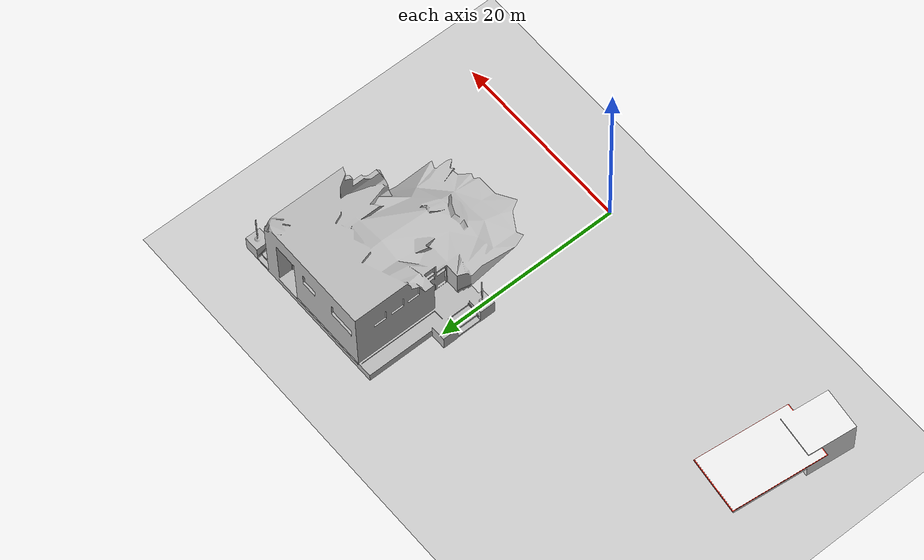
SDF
<sdf version="1.7">
 <world name="default">
  <light name="sun" type="directional">
   <pose>0 0 10 0 -0 0</pose>
   <diffuse>0.8 0.8 0.8 1</diffuse>
   <specular>0.2 0.2 0.2 1</specular>
   <attenuation>
    <range>1000</range>
    <constant>0.9</constant>
    <linear>0.01</linear>
    <quadratic>0.001</quadratic>
   </attenuation>
   <direction>-0.5 0.1 -0.9</direction>
   <spot><inner_angle>0</inner_angle><outer_angle>0</outer_angle><falloff>0</falloff></spot>
  </light>
  <model name="ground_plane">
   <static>1</static>
   <link name="link">
    <collision name="collision">
     <geometry><plane><normal>0 0 1</normal><size>100 100</size></plane></geometry>
     <surface>
      <contact><collide_bitmask>65535</collide_bitmask></contact>
      <friction><ode><mu>100</mu><mu2>50</mu2></ode></friction>
     </surface>
    </collision>
    <visual name="visual">
     <cast_shadows>0</cast_shadows>
     <geometry><plane><normal>0 0 1</normal><size>100 100</size></plane></geometry>
     <material>
      <script><uri>file://media/materials/scripts/gazebo.material</uri><name>Gazebo/Grey</name></script>
     </material>
    </visual>
   </link>
  </model>
  <gravity>0 0 -9.8</gravity>
  <magnetic_field>6e-06 2.3e-05 -4.2e-05</magnetic_field>
  <atmosphere type="adiabatic"/>
  <physics type="ode">
   <max_step_size>0.001</max_step_size>
   <real_time_factor>1</real_time_factor>
   <real_time_update_rate>1000</real_time_update_rate>
  </physics>
  <scene><ambient>0.4 0.4 0.4 1</ambient><background>0.7 0.7 0.7 1</background><shadows>1</shadows></scene>
  <spherical_coordinates>
   <surface_model>EARTH_WGS84</surface_model>
   <latitude_deg>0</latitude_deg>
   <longitude_deg>0</longitude_deg>
   <elevation>0</elevation>
   <heading_deg>0</heading_deg>
  </spherical_coordinates>
  <model name="block_robot_xacro">
   <link name="base_footprint">
    <inertial>
     <pose>0 0 0.025111 0 -0 0</pose>
     <mass>4.51</mass>
     <inertia>
      <ixx>0.00472078</ixx>
      <ixy>0</ixy>
      <ixz>0</ixz>
      <iyy>0.00472078</iyy>
      <iyz>0</iyz>
      <izz>0.0075125</izz>
     </inertia>
    </inertial>
    <collision name="base_footprint_fixed_joint_lump__base_link_collision">
     <pose>0 0 0.025 0 -0 0</pose>
     <geometry><box><size>0.1 0.1 0.05</size></box></geometry>
    </collision>
    <collision name="base_footprint_fixed_joint_lump__laser_link_collision_1">
     <pose>0 0 0.075 0 -0 0</pose>
     <geometry><cylinder><length>0.05</length><radius>0.05</radius></cylinder></geometry>
    </collision>
    <visual name="base_footprint_fixed_joint_lump__base_link_visual">
     <pose>0 0 0.025 0 -0 0</pose>
     <geometry><box><size>0.1 0.1 0.05</size></box></geometry>
     <material>
      <script><name>Gazebo/Green</name><uri>file://media/materials/scripts/gazebo.material</uri></script>
     </material>
    </visual>
    <visual name="base_footprint_fixed_joint_lump__laser_link_visual_1">
     <pose>0 0 0.075 0 -0 0</pose>
     <geometry><cylinder><length>0.05</length><radius>0.05</radius></cylinder></geometry>
     <material>
      <script><name>Gazebo/Red</name><uri>file://media/materials/scripts/gazebo.material</uri></script>
     </material>
    </visual>
    <sensor name="head_hokuyo_sensor" type="ray">
     <visualize>1</visualize>
     <update_rate>10</update_rate>
     <ray>
      <scan>
       <horizontal>
        <samples>360</samples>
        <resolution>1</resolution>
        <min_angle>-3.1415</min_angle>
        <max_angle>3.124</max_angle>
       </horizontal>
       <vertical><samples>1</samples><min_angle>0</min_angle><max_angle>0</max_angle></vertical>
      </scan>
      <range><min>0.2</min><max>10</max><resolution>0.01</resolution></range>
     </ray>
     <plugin name="gazebo_ros_head_hokuyo_controller" filename="libgazebo_ros_laser.so">
      <topicName>scan</topicName>
      <frameName>laser_link</frameName>
      <robotNamespace>/</robotNamespace>
     </plugin>
     <pose>0 0 0.075 0 -0 0</pose>
    </sensor>
   </link>
   <static>0</static>
   <plugin name="object_controller" filename="libgazebo_ros_planar_move.so">
    <commandTopic>cmd_vel</commandTopic>
    <odometryTopic>odom</odometryTopic>
    <odometryFrame>odom</odometryFrame>
    <odometryRate>20.0</odometryRate>
    <robotBaseFrame>base_footprint</robotBaseFrame>
    <robotNamespace>/</robotNamespace>
   </plugin>
   <pose>0.242291 -0.260966 -0 0 0 -0.781358</pose>
  </model>
  <model name="Gas Station">
   <static>1</static>
   <link name="link">
    <collision name="collision">
     <geometry><mesh><uri>model://gas_station/meshes/gas_station.dae</uri></mesh></geometry>
    </collision>
    <visual name="visual">
     <geometry><mesh><uri>model://gas_station/meshes/gas_station.dae</uri></mesh></geometry>
     <material>
      <script>
       <uri>model://gas_station/materials/scripts</uri>
       <uri>model://gas_station/materials/textures</uri>
       <name>GasStation/Diffuse</name>
      </script>
      <shader type="normal_map_tangent_space"><normal_map>GasStation_Normal.png</normal_map></shader>
     </material>
    </visual>
   </link>
   <pose>-29.6634 5.16707 0 -0.000387 0.00022 1.45317</pose>
  </model>
  <model name="collapsed_police_station">
   <static>1</static>
   <link name="link">
    <collision name="collision">
     <geometry>
      <mesh><uri>model://collapsed_police_station/meshes/collapsed_police_station.dae</uri></mesh>
     </geometry>
    </collision>
    <visual name="visual">
     <geometry>
      <mesh><uri>model://collapsed_police_station/meshes/collapsed_police_station.dae</uri></mesh>
     </geometry>
    </visual>
   </link>
   <pose>6.71062 18.323 4.22723 0 -0 0</pose>
  </model>
 </world>
</sdf>
